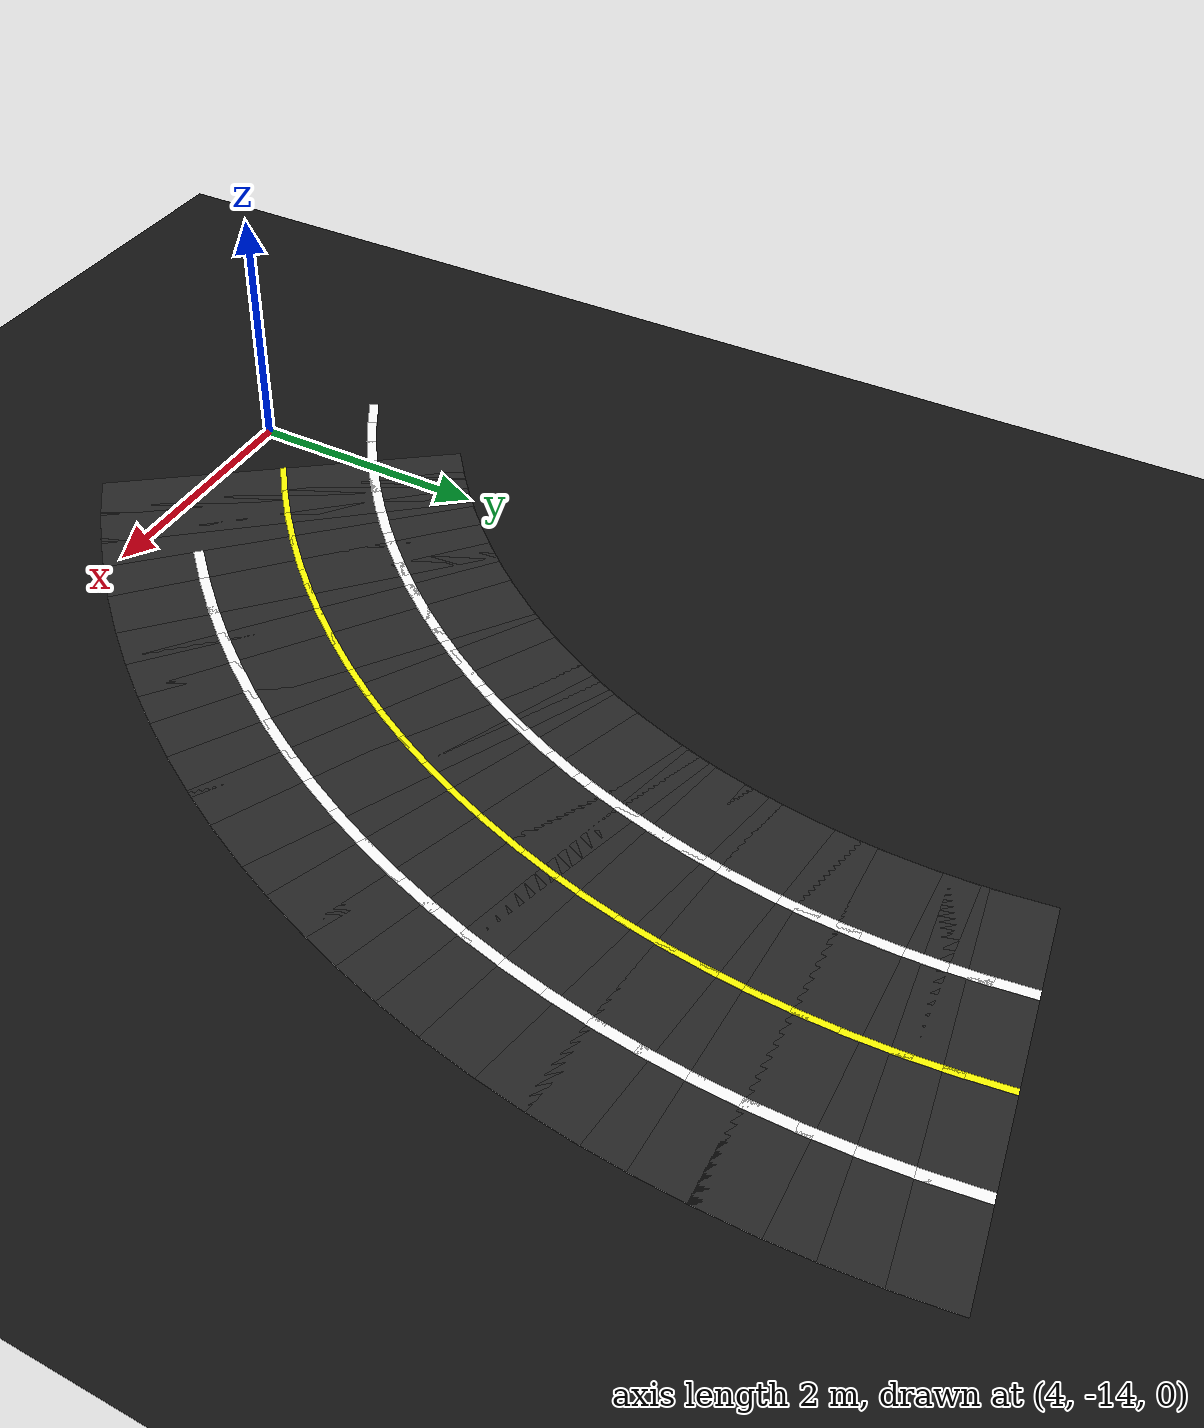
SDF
<sdf version="1.6">
 <world name="figure8_world">
  <model name="ground_plane">
   <static>true</static>
   <link name="link">
    <collision name="collision">
     <geometry><plane><normal>0 0 1</normal><size>100 100</size></plane></geometry>
    </collision>
    <visual name="visual">
     <geometry><plane><normal>0 0 1</normal><size>100 100</size></plane></geometry>
     <material><ambient>0.08 0.08 0.08 1</ambient><diffuse>0.08 0.08 0.08 1</diffuse></material>
    </visual>
   </link>
  </model>
  <model name="seg_00664">
   <static>true</static>
   <pose>7.4297 -6.4753 0.0010 0 0 -1.4337</pose>
   <link name="link">
    <collision name="collision"><geometry><box><size>0.4500 3.0000 0.002</size></box></geometry></collision>
    <visual name="visual">
     <geometry><box><size>0.4500 3.0000 0.002</size></box></geometry>
     <material><ambient>0.15 0.15 0.15 1</ambient><diffuse>0.15 0.15 0.15 1</diffuse></material>
    </visual>
   </link>
  </model>
  <model name="seg_00665">
   <static>true</static>
   <pose>8.1726 -6.3729 0.0030 0 0 -1.4337</pose>
   <link name="link">
    <collision name="collision"><geometry><box><size>0.4500 0.0800 0.002</size></box></geometry></collision>
    <visual name="visual">
     <geometry><box><size>0.4500 0.0800 0.002</size></box></geometry>
     <material><ambient>1 1 1 1</ambient><diffuse>1 1 1 1</diffuse></material>
    </visual>
   </link>
  </model>
  <model name="seg_00666">
   <static>true</static>
   <pose>6.6867 -6.5778 0.0030 0 0 -1.4337</pose>
   <link name="link">
    <collision name="collision"><geometry><box><size>0.4500 0.0800 0.002</size></box></geometry></collision>
    <visual name="visual">
     <geometry><box><size>0.4500 0.0800 0.002</size></box></geometry>
     <material><ambient>1 1 1 1</ambient><diffuse>1 1 1 1</diffuse></material>
    </visual>
   </link>
  </model>
  <model name="seg_00667">
   <static>true</static>
   <pose>7.4297 -6.4753 0.0030 0 0 -1.4337</pose>
   <link name="link">
    <collision name="collision"><geometry><box><size>0.4500 0.0500 0.002</size></box></geometry></collision>
    <visual name="visual">
     <geometry><box><size>0.4500 0.0500 0.002</size></box></geometry>
     <material><ambient>1 1 0 1</ambient><diffuse>1 1 0 1</diffuse></material>
    </visual>
   </link>
  </model>
  <model name="seg_00668">
   <static>true</static>
   <pose>7.4663 -6.7895 0.0010 0 0 -1.4759</pose>
   <link name="link">
    <collision name="collision"><geometry><box><size>0.4500 3.0000 0.002</size></box></geometry></collision>
    <visual name="visual">
     <geometry><box><size>0.4500 3.0000 0.002</size></box></geometry>
     <material><ambient>0.15 0.15 0.15 1</ambient><diffuse>0.15 0.15 0.15 1</diffuse></material>
    </visual>
   </link>
  </model>
  <model name="seg_00669">
   <static>true</static>
   <pose>8.2129 -6.7184 0.0030 0 0 -1.4759</pose>
   <link name="link">
    <collision name="collision"><geometry><box><size>0.4500 0.0800 0.002</size></box></geometry></collision>
    <visual name="visual">
     <geometry><box><size>0.4500 0.0800 0.002</size></box></geometry>
     <material><ambient>1 1 1 1</ambient><diffuse>1 1 1 1</diffuse></material>
    </visual>
   </link>
  </model>
  <model name="seg_00670">
   <static>true</static>
   <pose>6.7196 -6.8605 0.0030 0 0 -1.4759</pose>
   <link name="link">
    <collision name="collision"><geometry><box><size>0.4500 0.0800 0.002</size></box></geometry></collision>
    <visual name="visual">
     <geometry><box><size>0.4500 0.0800 0.002</size></box></geometry>
     <material><ambient>1 1 1 1</ambient><diffuse>1 1 1 1</diffuse></material>
    </visual>
   </link>
  </model>
  <model name="seg_00671">
   <static>true</static>
   <pose>7.4663 -6.7895 0.0030 0 0 -1.4759</pose>
   <link name="link">
    <collision name="collision"><geometry><box><size>0.4500 0.0500 0.002</size></box></geometry></collision>
    <visual name="visual">
     <geometry><box><size>0.4500 0.0500 0.002</size></box></geometry>
     <material><ambient>1 1 0 1</ambient><diffuse>1 1 0 1</diffuse></material>
    </visual>
   </link>
  </model>
  <model name="seg_00672">
   <static>true</static>
   <pose>7.4896 -7.1048 0.0010 0 0 -1.5181</pose>
   <link name="link">
    <collision name="collision"><geometry><box><size>0.4500 3.0000 0.002</size></box></geometry></collision>
    <visual name="visual">
     <geometry><box><size>0.4500 3.0000 0.002</size></box></geometry>
     <material><ambient>0.15 0.15 0.15 1</ambient><diffuse>0.15 0.15 0.15 1</diffuse></material>
    </visual>
   </link>
  </model>
  <model name="seg_00673">
   <static>true</static>
   <pose>8.2385 -7.0653 0.0030 0 0 -1.5181</pose>
   <link name="link">
    <collision name="collision"><geometry><box><size>0.4500 0.0800 0.002</size></box></geometry></collision>
    <visual name="visual">
     <geometry><box><size>0.4500 0.0800 0.002</size></box></geometry>
     <material><ambient>1 1 1 1</ambient><diffuse>1 1 1 1</diffuse></material>
    </visual>
   </link>
  </model>
  <model name="seg_00674">
   <static>true</static>
   <pose>6.7406 -7.1444 0.0030 0 0 -1.5181</pose>
   <link name="link">
    <collision name="collision"><geometry><box><size>0.4500 0.0800 0.002</size></box></geometry></collision>
    <visual name="visual">
     <geometry><box><size>0.4500 0.0800 0.002</size></box></geometry>
     <material><ambient>1 1 1 1</ambient><diffuse>1 1 1 1</diffuse></material>
    </visual>
   </link>
  </model>
  <model name="seg_00675">
   <static>true</static>
   <pose>7.4896 -7.1048 0.0030 0 0 -1.5181</pose>
   <link name="link">
    <collision name="collision"><geometry><box><size>0.4500 0.0500 0.002</size></box></geometry></collision>
    <visual name="visual">
     <geometry><box><size>0.4500 0.0500 0.002</size></box></geometry>
     <material><ambient>1 1 0 1</ambient><diffuse>1 1 0 1</diffuse></material>
    </visual>
   </link>
  </model>
  <model name="seg_00676">
   <static>true</static>
   <pose>7.4996 -7.4209 0.0010 0 0 -1.5603</pose>
   <link name="link">
    <collision name="collision"><geometry><box><size>0.4500 3.0000 0.002</size></box></geometry></collision>
    <visual name="visual">
     <geometry><box><size>0.4500 3.0000 0.002</size></box></geometry>
     <material><ambient>0.15 0.15 0.15 1</ambient><diffuse>0.15 0.15 0.15 1</diffuse></material>
    </visual>
   </link>
  </model>
  <model name="seg_00677">
   <static>true</static>
   <pose>8.2495 -7.4130 0.0030 0 0 -1.5603</pose>
   <link name="link">
    <collision name="collision"><geometry><box><size>0.4500 0.0800 0.002</size></box></geometry></collision>
    <visual name="visual">
     <geometry><box><size>0.4500 0.0800 0.002</size></box></geometry>
     <material><ambient>1 1 1 1</ambient><diffuse>1 1 1 1</diffuse></material>
    </visual>
   </link>
  </model>
  <model name="seg_00678">
   <static>true</static>
   <pose>6.7496 -7.4288 0.0030 0 0 -1.5603</pose>
   <link name="link">
    <collision name="collision"><geometry><box><size>0.4500 0.0800 0.002</size></box></geometry></collision>
    <visual name="visual">
     <geometry><box><size>0.4500 0.0800 0.002</size></box></geometry>
     <material><ambient>1 1 1 1</ambient><diffuse>1 1 1 1</diffuse></material>
    </visual>
   </link>
  </model>
  <model name="seg_00679">
   <static>true</static>
   <pose>7.4996 -7.4209 0.0030 0 0 -1.5603</pose>
   <link name="link">
    <collision name="collision"><geometry><box><size>0.4500 0.0500 0.002</size></box></geometry></collision>
    <visual name="visual">
     <geometry><box><size>0.4500 0.0500 0.002</size></box></geometry>
     <material><ambient>1 1 0 1</ambient><diffuse>1 1 0 1</diffuse></material>
    </visual>
   </link>
  </model>
  <model name="seg_00680">
   <static>true</static>
   <pose>7.4962 -7.7372 0.0010 0 0 -1.6024</pose>
   <link name="link">
    <collision name="collision"><geometry><box><size>0.4500 3.0000 0.002</size></box></geometry></collision>
    <visual name="visual">
     <geometry><box><size>0.4500 3.0000 0.002</size></box></geometry>
     <material><ambient>0.15 0.15 0.15 1</ambient><diffuse>0.15 0.15 0.15 1</diffuse></material>
    </visual>
   </link>
  </model>
  <model name="seg_00681">
   <static>true</static>
   <pose>8.2459 -7.7609 0.0030 0 0 -1.6024</pose>
   <link name="link">
    <collision name="collision"><geometry><box><size>0.4500 0.0800 0.002</size></box></geometry></collision>
    <visual name="visual">
     <geometry><box><size>0.4500 0.0800 0.002</size></box></geometry>
     <material><ambient>1 1 1 1</ambient><diffuse>1 1 1 1</diffuse></material>
    </visual>
   </link>
  </model>
  <model name="seg_00682">
   <static>true</static>
   <pose>6.7466 -7.7134 0.0030 0 0 -1.6024</pose>
   <link name="link">
    <collision name="collision"><geometry><box><size>0.4500 0.0800 0.002</size></box></geometry></collision>
    <visual name="visual">
     <geometry><box><size>0.4500 0.0800 0.002</size></box></geometry>
     <material><ambient>1 1 1 1</ambient><diffuse>1 1 1 1</diffuse></material>
    </visual>
   </link>
  </model>
  <model name="seg_00683">
   <static>true</static>
   <pose>7.4962 -7.7372 0.0030 0 0 -1.6024</pose>
   <link name="link">
    <collision name="collision"><geometry><box><size>0.4500 0.0500 0.002</size></box></geometry></collision>
    <visual name="visual">
     <geometry><box><size>0.4500 0.0500 0.002</size></box></geometry>
     <material><ambient>1 1 0 1</ambient><diffuse>1 1 0 1</diffuse></material>
    </visual>
   </link>
  </model>
  <model name="seg_00684">
   <static>true</static>
   <pose>7.4796 -8.0530 0.0010 0 0 -1.6446</pose>
   <link name="link">
    <collision name="collision"><geometry><box><size>0.4500 3.0000 0.002</size></box></geometry></collision>
    <visual name="visual">
     <geometry><box><size>0.4500 3.0000 0.002</size></box></geometry>
     <material><ambient>0.15 0.15 0.15 1</ambient><diffuse>0.15 0.15 0.15 1</diffuse></material>
    </visual>
   </link>
  </model>
  <model name="seg_00685">
   <static>true</static>
   <pose>8.2275 -8.1083 0.0030 0 0 -1.6446</pose>
   <link name="link">
    <collision name="collision"><geometry><box><size>0.4500 0.0800 0.002</size></box></geometry></collision>
    <visual name="visual">
     <geometry><box><size>0.4500 0.0800 0.002</size></box></geometry>
     <material><ambient>1 1 1 1</ambient><diffuse>1 1 1 1</diffuse></material>
    </visual>
   </link>
  </model>
  <model name="seg_00686">
   <static>true</static>
   <pose>6.7316 -7.9977 0.0030 0 0 -1.6446</pose>
   <link name="link">
    <collision name="collision"><geometry><box><size>0.4500 0.0800 0.002</size></box></geometry></collision>
    <visual name="visual">
     <geometry><box><size>0.4500 0.0800 0.002</size></box></geometry>
     <material><ambient>1 1 1 1</ambient><diffuse>1 1 1 1</diffuse></material>
    </visual>
   </link>
  </model>
  <model name="seg_00687">
   <static>true</static>
   <pose>7.4796 -8.0530 0.0030 0 0 -1.6446</pose>
   <link name="link">
    <collision name="collision"><geometry><box><size>0.4500 0.0500 0.002</size></box></geometry></collision>
    <visual name="visual">
     <geometry><box><size>0.4500 0.0500 0.002</size></box></geometry>
     <material><ambient>1 1 0 1</ambient><diffuse>1 1 0 1</diffuse></material>
    </visual>
   </link>
  </model>
  <model name="seg_00688">
   <static>true</static>
   <pose>7.4496 -8.3678 0.0010 0 0 -1.6868</pose>
   <link name="link">
    <collision name="collision"><geometry><box><size>0.4500 3.0000 0.002</size></box></geometry></collision>
    <visual name="visual">
     <geometry><box><size>0.4500 3.0000 0.002</size></box></geometry>
     <material><ambient>0.15 0.15 0.15 1</ambient><diffuse>0.15 0.15 0.15 1</diffuse></material>
    </visual>
   </link>
  </model>
  <model name="seg_00689">
   <static>true</static>
   <pose>8.1946 -8.4546 0.0030 0 0 -1.6868</pose>
   <link name="link">
    <collision name="collision"><geometry><box><size>0.4500 0.0800 0.002</size></box></geometry></collision>
    <visual name="visual">
     <geometry><box><size>0.4500 0.0800 0.002</size></box></geometry>
     <material><ambient>1 1 1 1</ambient><diffuse>1 1 1 1</diffuse></material>
    </visual>
   </link>
  </model>
  <model name="seg_00690">
   <static>true</static>
   <pose>6.7047 -8.2810 0.0030 0 0 -1.6868</pose>
   <link name="link">
    <collision name="collision"><geometry><box><size>0.4500 0.0800 0.002</size></box></geometry></collision>
    <visual name="visual">
     <geometry><box><size>0.4500 0.0800 0.002</size></box></geometry>
     <material><ambient>1 1 1 1</ambient><diffuse>1 1 1 1</diffuse></material>
    </visual>
   </link>
  </model>
  <model name="seg_00691">
   <static>true</static>
   <pose>7.4496 -8.3678 0.0030 0 0 -1.6868</pose>
   <link name="link">
    <collision name="collision"><geometry><box><size>0.4500 0.0500 0.002</size></box></geometry></collision>
    <visual name="visual">
     <geometry><box><size>0.4500 0.0500 0.002</size></box></geometry>
     <material><ambient>1 1 0 1</ambient><diffuse>1 1 0 1</diffuse></material>
    </visual>
   </link>
  </model>
  <model name="seg_00692">
   <static>true</static>
   <pose>7.4064 -8.6811 0.0010 0 0 -1.7289</pose>
   <link name="link">
    <collision name="collision"><geometry><box><size>0.4500 3.0000 0.002</size></box></geometry></collision>
    <visual name="visual">
     <geometry><box><size>0.4500 3.0000 0.002</size></box></geometry>
     <material><ambient>0.15 0.15 0.15 1</ambient><diffuse>0.15 0.15 0.15 1</diffuse></material>
    </visual>
   </link>
  </model>
  <model name="seg_00693">
   <static>true</static>
   <pose>8.1471 -8.7992 0.0030 0 0 -1.7289</pose>
   <link name="link">
    <collision name="collision"><geometry><box><size>0.4500 0.0800 0.002</size></box></geometry></collision>
    <visual name="visual">
     <geometry><box><size>0.4500 0.0800 0.002</size></box></geometry>
     <material><ambient>1 1 1 1</ambient><diffuse>1 1 1 1</diffuse></material>
    </visual>
   </link>
  </model>
  <model name="seg_00694">
   <static>true</static>
   <pose>6.6658 -8.5630 0.0030 0 0 -1.7289</pose>
   <link name="link">
    <collision name="collision"><geometry><box><size>0.4500 0.0800 0.002</size></box></geometry></collision>
    <visual name="visual">
     <geometry><box><size>0.4500 0.0800 0.002</size></box></geometry>
     <material><ambient>1 1 1 1</ambient><diffuse>1 1 1 1</diffuse></material>
    </visual>
   </link>
  </model>
  <model name="seg_00695">
   <static>true</static>
   <pose>7.4064 -8.6811 0.0030 0 0 -1.7289</pose>
   <link name="link">
    <collision name="collision"><geometry><box><size>0.4500 0.0500 0.002</size></box></geometry></collision>
    <visual name="visual">
     <geometry><box><size>0.4500 0.0500 0.002</size></box></geometry>
     <material><ambient>1 1 0 1</ambient><diffuse>1 1 0 1</diffuse></material>
    </visual>
   </link>
  </model>
  <model name="seg_00696">
   <static>true</static>
   <pose>7.3500 -8.9922 0.0010 0 0 -1.7711</pose>
   <link name="link">
    <collision name="collision"><geometry><box><size>0.4500 3.0000 0.002</size></box></geometry></collision>
    <visual name="visual">
     <geometry><box><size>0.4500 3.0000 0.002</size></box></geometry>
     <material><ambient>0.15 0.15 0.15 1</ambient><diffuse>0.15 0.15 0.15 1</diffuse></material>
    </visual>
   </link>
  </model>
  <model name="seg_00697">
   <static>true</static>
   <pose>8.0851 -9.1415 0.0030 0 0 -1.7711</pose>
   <link name="link">
    <collision name="collision"><geometry><box><size>0.4500 0.0800 0.002</size></box></geometry></collision>
    <visual name="visual">
     <geometry><box><size>0.4500 0.0800 0.002</size></box></geometry>
     <material><ambient>1 1 1 1</ambient><diffuse>1 1 1 1</diffuse></material>
    </visual>
   </link>
  </model>
  <model name="seg_00698">
   <static>true</static>
   <pose>6.6150 -8.8430 0.0030 0 0 -1.7711</pose>
   <link name="link">
    <collision name="collision"><geometry><box><size>0.4500 0.0800 0.002</size></box></geometry></collision>
    <visual name="visual">
     <geometry><box><size>0.4500 0.0800 0.002</size></box></geometry>
     <material><ambient>1 1 1 1</ambient><diffuse>1 1 1 1</diffuse></material>
    </visual>
   </link>
  </model>
  <model name="seg_00699">
   <static>true</static>
   <pose>7.3500 -8.9922 0.0030 0 0 -1.7711</pose>
   <link name="link">
    <collision name="collision"><geometry><box><size>0.4500 0.0500 0.002</size></box></geometry></collision>
    <visual name="visual">
     <geometry><box><size>0.4500 0.0500 0.002</size></box></geometry>
     <material><ambient>1 1 0 1</ambient><diffuse>1 1 0 1</diffuse></material>
    </visual>
   </link>
  </model>
  <model name="seg_00700">
   <static>true</static>
   <pose>7.2806 -9.3008 0.0010 0 0 -1.8133</pose>
   <link name="link">
    <collision name="collision"><geometry><box><size>0.4500 3.0000 0.002</size></box></geometry></collision>
    <visual name="visual">
     <geometry><box><size>0.4500 3.0000 0.002</size></box></geometry>
     <material><ambient>0.15 0.15 0.15 1</ambient><diffuse>0.15 0.15 0.15 1</diffuse></material>
    </visual>
   </link>
  </model>
  <model name="seg_00701">
   <static>true</static>
   <pose>8.0087 -9.4808 0.0030 0 0 -1.8133</pose>
   <link name="link">
    <collision name="collision"><geometry><box><size>0.4500 0.0800 0.002</size></box></geometry></collision>
    <visual name="visual">
     <geometry><box><size>0.4500 0.0800 0.002</size></box></geometry>
     <material><ambient>1 1 1 1</ambient><diffuse>1 1 1 1</diffuse></material>
    </visual>
   </link>
  </model>
  <model name="seg_00702">
   <static>true</static>
   <pose>6.5525 -9.1207 0.0030 0 0 -1.8133</pose>
   <link name="link">
    <collision name="collision"><geometry><box><size>0.4500 0.0800 0.002</size></box></geometry></collision>
    <visual name="visual">
     <geometry><box><size>0.4500 0.0800 0.002</size></box></geometry>
     <material><ambient>1 1 1 1</ambient><diffuse>1 1 1 1</diffuse></material>
    </visual>
   </link>
  </model>
  <model name="seg_00703">
   <static>true</static>
   <pose>7.2806 -9.3008 0.0030 0 0 -1.8133</pose>
   <link name="link">
    <collision name="collision"><geometry><box><size>0.4500 0.0500 0.002</size></box></geometry></collision>
    <visual name="visual">
     <geometry><box><size>0.4500 0.0500 0.002</size></box></geometry>
     <material><ambient>1 1 0 1</ambient><diffuse>1 1 0 1</diffuse></material>
    </visual>
   </link>
  </model>
  <model name="seg_00704">
   <static>true</static>
   <pose>7.1982 -9.6061 0.0010 0 0 -1.8554</pose>
   <link name="link">
    <collision name="collision"><geometry><box><size>0.4500 3.0000 0.002</size></box></geometry></collision>
    <visual name="visual">
     <geometry><box><size>0.4500 3.0000 0.002</size></box></geometry>
     <material><ambient>0.15 0.15 0.15 1</ambient><diffuse>0.15 0.15 0.15 1</diffuse></material>
    </visual>
   </link>
  </model>
  <model name="seg_00705">
   <static>true</static>
   <pose>7.9180 -9.8167 0.0030 0 0 -1.8554</pose>
   <link name="link">
    <collision name="collision"><geometry><box><size>0.4500 0.0800 0.002</size></box></geometry></collision>
    <visual name="visual">
     <geometry><box><size>0.4500 0.0800 0.002</size></box></geometry>
     <material><ambient>1 1 1 1</ambient><diffuse>1 1 1 1</diffuse></material>
    </visual>
   </link>
  </model>
  <model name="seg_00706">
   <static>true</static>
   <pose>6.4784 -9.3955 0.0030 0 0 -1.8554</pose>
   <link name="link">
    <collision name="collision"><geometry><box><size>0.4500 0.0800 0.002</size></box></geometry></collision>
    <visual name="visual">
     <geometry><box><size>0.4500 0.0800 0.002</size></box></geometry>
     <material><ambient>1 1 1 1</ambient><diffuse>1 1 1 1</diffuse></material>
    </visual>
   </link>
  </model>
  <model name="seg_00707">
   <static>true</static>
   <pose>7.1982 -9.6061 0.0030 0 0 -1.8554</pose>
   <link name="link">
    <collision name="collision"><geometry><box><size>0.4500 0.0500 0.002</size></box></geometry></collision>
    <visual name="visual">
     <geometry><box><size>0.4500 0.0500 0.002</size></box></geometry>
     <material><ambient>1 1 0 1</ambient><diffuse>1 1 0 1</diffuse></material>
    </visual>
   </link>
  </model>
  <model name="seg_00708">
   <static>true</static>
   <pose>7.1030 -9.9077 0.0010 0 0 -1.8976</pose>
   <link name="link">
    <collision name="collision"><geometry><box><size>0.4500 3.0000 0.002</size></box></geometry></collision>
    <visual name="visual">
     <geometry><box><size>0.4500 3.0000 0.002</size></box></geometry>
     <material><ambient>0.15 0.15 0.15 1</ambient><diffuse>0.15 0.15 0.15 1</diffuse></material>
    </visual>
   </link>
  </model>
  <model name="seg_00709">
   <static>true</static>
   <pose>7.8133 -10.1484 0.0030 0 0 -1.8976</pose>
   <link name="link">
    <collision name="collision"><geometry><box><size>0.4500 0.0800 0.002</size></box></geometry></collision>
    <visual name="visual">
     <geometry><box><size>0.4500 0.0800 0.002</size></box></geometry>
     <material><ambient>1 1 1 1</ambient><diffuse>1 1 1 1</diffuse></material>
    </visual>
   </link>
  </model>
  <model name="seg_00710">
   <static>true</static>
   <pose>6.3927 -9.6669 0.0030 0 0 -1.8976</pose>
   <link name="link">
    <collision name="collision"><geometry><box><size>0.4500 0.0800 0.002</size></box></geometry></collision>
    <visual name="visual">
     <geometry><box><size>0.4500 0.0800 0.002</size></box></geometry>
     <material><ambient>1 1 1 1</ambient><diffuse>1 1 1 1</diffuse></material>
    </visual>
   </link>
  </model>
  <model name="seg_00711">
   <static>true</static>
   <pose>7.1030 -9.9077 0.0030 0 0 -1.8976</pose>
   <link name="link">
    <collision name="collision"><geometry><box><size>0.4500 0.0500 0.002</size></box></geometry></collision>
    <visual name="visual">
     <geometry><box><size>0.4500 0.0500 0.002</size></box></geometry>
     <material><ambient>1 1 0 1</ambient><diffuse>1 1 0 1</diffuse></material>
    </visual>
   </link>
  </model>
  <model name="seg_00712">
   <static>true</static>
   <pose>6.9952 -10.2050 0.0010 0 0 -1.9398</pose>
   <link name="link">
    <collision name="collision"><geometry><box><size>0.4500 3.0000 0.002</size></box></geometry></collision>
    <visual name="visual">
     <geometry><box><size>0.4500 3.0000 0.002</size></box></geometry>
     <material><ambient>0.15 0.15 0.15 1</ambient><diffuse>0.15 0.15 0.15 1</diffuse></material>
    </visual>
   </link>
  </model>
  <model name="seg_00713">
   <static>true</static>
   <pose>7.6947 -10.4755 0.0030 0 0 -1.9398</pose>
   <link name="link">
    <collision name="collision"><geometry><box><size>0.4500 0.0800 0.002</size></box></geometry></collision>
    <visual name="visual">
     <geometry><box><size>0.4500 0.0800 0.002</size></box></geometry>
     <material><ambient>1 1 1 1</ambient><diffuse>1 1 1 1</diffuse></material>
    </visual>
   </link>
  </model>
  <model name="seg_00714">
   <static>true</static>
   <pose>6.2957 -9.9345 0.0030 0 0 -1.9398</pose>
   <link name="link">
    <collision name="collision"><geometry><box><size>0.4500 0.0800 0.002</size></box></geometry></collision>
    <visual name="visual">
     <geometry><box><size>0.4500 0.0800 0.002</size></box></geometry>
     <material><ambient>1 1 1 1</ambient><diffuse>1 1 1 1</diffuse></material>
    </visual>
   </link>
  </model>
  <model name="seg_00715">
   <static>true</static>
   <pose>6.9952 -10.2050 0.0030 0 0 -1.9398</pose>
   <link name="link">
    <collision name="collision"><geometry><box><size>0.4500 0.0500 0.002</size></box></geometry></collision>
    <visual name="visual">
     <geometry><box><size>0.4500 0.0500 0.002</size></box></geometry>
     <material><ambient>1 1 0 1</ambient><diffuse>1 1 0 1</diffuse></material>
    </visual>
   </link>
  </model>
  <model name="seg_00716">
   <static>true</static>
   <pose>6.8750 -10.4975 0.0010 0 0 -1.9819</pose>
   <link name="link">
    <collision name="collision"><geometry><box><size>0.4500 3.0000 0.002</size></box></geometry></collision>
    <visual name="visual">
     <geometry><box><size>0.4500 3.0000 0.002</size></box></geometry>
     <material><ambient>0.15 0.15 0.15 1</ambient><diffuse>0.15 0.15 0.15 1</diffuse></material>
    </visual>
   </link>
  </model>
  <model name="seg_00717">
   <static>true</static>
   <pose>7.5625 -10.7972 0.0030 0 0 -1.9819</pose>
   <link name="link">
    <collision name="collision"><geometry><box><size>0.4500 0.0800 0.002</size></box></geometry></collision>
    <visual name="visual">
     <geometry><box><size>0.4500 0.0800 0.002</size></box></geometry>
     <material><ambient>1 1 1 1</ambient><diffuse>1 1 1 1</diffuse></material>
    </visual>
   </link>
  </model>
  <model name="seg_00718">
   <static>true</static>
   <pose>6.1875 -10.1977 0.0030 0 0 -1.9819</pose>
   <link name="link">
    <collision name="collision"><geometry><box><size>0.4500 0.0800 0.002</size></box></geometry></collision>
    <visual name="visual">
     <geometry><box><size>0.4500 0.0800 0.002</size></box></geometry>
     <material><ambient>1 1 1 1</ambient><diffuse>1 1 1 1</diffuse></material>
    </visual>
   </link>
  </model>
  <model name="seg_00719">
   <static>true</static>
   <pose>6.8750 -10.4975 0.0030 0 0 -1.9819</pose>
   <link name="link">
    <collision name="collision"><geometry><box><size>0.4500 0.0500 0.002</size></box></geometry></collision>
    <visual name="visual">
     <geometry><box><size>0.4500 0.0500 0.002</size></box></geometry>
     <material><ambient>1 1 0 1</ambient><diffuse>1 1 0 1</diffuse></material>
    </visual>
   </link>
  </model>
  <model name="seg_00720">
   <static>true</static>
   <pose>6.7425 -10.7846 0.0010 0 0 -2.0241</pose>
   <link name="link">
    <collision name="collision"><geometry><box><size>0.4500 3.0000 0.002</size></box></geometry></collision>
    <visual name="visual">
     <geometry><box><size>0.4500 3.0000 0.002</size></box></geometry>
     <material><ambient>0.15 0.15 0.15 1</ambient><diffuse>0.15 0.15 0.15 1</diffuse></material>
    </visual>
   </link>
  </model>
  <model name="seg_00721">
   <static>true</static>
   <pose>7.4167 -11.1131 0.0030 0 0 -2.0241</pose>
   <link name="link">
    <collision name="collision"><geometry><box><size>0.4500 0.0800 0.002</size></box></geometry></collision>
    <visual name="visual">
     <geometry><box><size>0.4500 0.0800 0.002</size></box></geometry>
     <material><ambient>1 1 1 1</ambient><diffuse>1 1 1 1</diffuse></material>
    </visual>
   </link>
  </model>
  <model name="seg_00722">
   <static>true</static>
   <pose>6.0682 -10.4562 0.0030 0 0 -2.0241</pose>
   <link name="link">
    <collision name="collision"><geometry><box><size>0.4500 0.0800 0.002</size></box></geometry></collision>
    <visual name="visual">
     <geometry><box><size>0.4500 0.0800 0.002</size></box></geometry>
     <material><ambient>1 1 1 1</ambient><diffuse>1 1 1 1</diffuse></material>
    </visual>
   </link>
  </model>
  <model name="seg_00723">
   <static>true</static>
   <pose>6.7425 -10.7846 0.0030 0 0 -2.0241</pose>
   <link name="link">
    <collision name="collision"><geometry><box><size>0.4500 0.0500 0.002</size></box></geometry></collision>
    <visual name="visual">
     <geometry><box><size>0.4500 0.0500 0.002</size></box></geometry>
     <material><ambient>1 1 0 1</ambient><diffuse>1 1 0 1</diffuse></material>
    </visual>
   </link>
  </model>
  <model name="seg_00724">
   <static>true</static>
   <pose>6.5980 -11.0659 0.0010 0 0 -2.0663</pose>
   <link name="link">
    <collision name="collision"><geometry><box><size>0.4500 3.0000 0.002</size></box></geometry></collision>
    <visual name="visual">
     <geometry><box><size>0.4500 3.0000 0.002</size></box></geometry>
     <material><ambient>0.15 0.15 0.15 1</ambient><diffuse>0.15 0.15 0.15 1</diffuse></material>
    </visual>
   </link>
  </model>
  <model name="seg_00725">
   <static>true</static>
   <pose>7.2578 -11.4225 0.0030 0 0 -2.0663</pose>
   <link name="link">
    <collision name="collision"><geometry><box><size>0.4500 0.0800 0.002</size></box></geometry></collision>
    <visual name="visual">
     <geometry><box><size>0.4500 0.0800 0.002</size></box></geometry>
     <material><ambient>1 1 1 1</ambient><diffuse>1 1 1 1</diffuse></material>
    </visual>
   </link>
  </model>
  <model name="seg_00726">
   <static>true</static>
   <pose>5.9382 -10.7094 0.0030 0 0 -2.0663</pose>
   <link name="link">
    <collision name="collision"><geometry><box><size>0.4500 0.0800 0.002</size></box></geometry></collision>
    <visual name="visual">
     <geometry><box><size>0.4500 0.0800 0.002</size></box></geometry>
     <material><ambient>1 1 1 1</ambient><diffuse>1 1 1 1</diffuse></material>
    </visual>
   </link>
  </model>
  <model name="seg_00727">
   <static>true</static>
   <pose>6.5980 -11.0659 0.0030 0 0 -2.0663</pose>
   <link name="link">
    <collision name="collision"><geometry><box><size>0.4500 0.0500 0.002</size></box></geometry></collision>
    <visual name="visual">
     <geometry><box><size>0.4500 0.0500 0.002</size></box></geometry>
     <material><ambient>1 1 0 1</ambient><diffuse>1 1 0 1</diffuse></material>
    </visual>
   </link>
  </model>
  <model name="seg_00728">
   <static>true</static>
   <pose>6.4418 -11.3409 0.0010 0 0 -2.1085</pose>
   <link name="link">
    <collision name="collision"><geometry><box><size>0.4500 3.0000 0.002</size></box></geometry></collision>
    <visual name="visual">
     <geometry><box><size>0.4500 3.0000 0.002</size></box></geometry>
     <material><ambient>0.15 0.15 0.15 1</ambient><diffuse>0.15 0.15 0.15 1</diffuse></material>
    </visual>
   </link>
  </model>
  <model name="seg_00729">
   <static>true</static>
   <pose>7.0860 -11.7250 0.0030 0 0 -2.1085</pose>
   <link name="link">
    <collision name="collision"><geometry><box><size>0.4500 0.0800 0.002</size></box></geometry></collision>
    <visual name="visual">
     <geometry><box><size>0.4500 0.0800 0.002</size></box></geometry>
     <material><ambient>1 1 1 1</ambient><diffuse>1 1 1 1</diffuse></material>
    </visual>
   </link>
  </model>
  <model name="seg_00730">
   <static>true</static>
   <pose>5.7977 -10.9568 0.0030 0 0 -2.1085</pose>
   <link name="link">
    <collision name="collision"><geometry><box><size>0.4500 0.0800 0.002</size></box></geometry></collision>
    <visual name="visual">
     <geometry><box><size>0.4500 0.0800 0.002</size></box></geometry>
     <material><ambient>1 1 1 1</ambient><diffuse>1 1 1 1</diffuse></material>
    </visual>
   </link>
  </model>
  <model name="seg_00731">
   <static>true</static>
   <pose>6.4418 -11.3409 0.0030 0 0 -2.1085</pose>
   <link name="link">
    <collision name="collision"><geometry><box><size>0.4500 0.0500 0.002</size></box></geometry></collision>
    <visual name="visual">
     <geometry><box><size>0.4500 0.0500 0.002</size></box></geometry>
     <material><ambient>1 1 0 1</ambient><diffuse>1 1 0 1</diffuse></material>
    </visual>
   </link>
  </model>
  <model name="seg_00732">
   <static>true</static>
   <pose>6.2742 -11.6091 0.0010 0 0 -2.1506</pose>
   <link name="link">
    <collision name="collision"><geometry><box><size>0.4500 3.0000 0.002</size></box></geometry></collision>
    <visual name="visual">
     <geometry><box><size>0.4500 3.0000 0.002</size></box></geometry>
     <material><ambient>0.15 0.15 0.15 1</ambient><diffuse>0.15 0.15 0.15 1</diffuse></material>
    </visual>
   </link>
  </model>
  <model name="seg_00733">
   <static>true</static>
   <pose>6.9016 -12.0200 0.0030 0 0 -2.1506</pose>
   <link name="link">
    <collision name="collision"><geometry><box><size>0.4500 0.0800 0.002</size></box></geometry></collision>
    <visual name="visual">
     <geometry><box><size>0.4500 0.0800 0.002</size></box></geometry>
     <material><ambient>1 1 1 1</ambient><diffuse>1 1 1 1</diffuse></material>
    </visual>
   </link>
  </model>
  <model name="seg_00734">
   <static>true</static>
   <pose>5.6468 -11.1982 0.0030 0 0 -2.1506</pose>
   <link name="link">
    <collision name="collision"><geometry><box><size>0.4500 0.0800 0.002</size></box></geometry></collision>
    <visual name="visual">
     <geometry><box><size>0.4500 0.0800 0.002</size></box></geometry>
     <material><ambient>1 1 1 1</ambient><diffuse>1 1 1 1</diffuse></material>
    </visual>
   </link>
  </model>
  <model name="seg_00735">
   <static>true</static>
   <pose>6.2742 -11.6091 0.0030 0 0 -2.1506</pose>
   <link name="link">
    <collision name="collision"><geometry><box><size>0.4500 0.0500 0.002</size></box></geometry></collision>
    <visual name="visual">
     <geometry><box><size>0.4500 0.0500 0.002</size></box></geometry>
     <material><ambient>1 1 0 1</ambient><diffuse>1 1 0 1</diffuse></material>
    </visual>
   </link>
  </model>
  <model name="seg_00736">
   <static>true</static>
   <pose>6.0954 -11.8699 0.0010 0 0 -2.1928</pose>
   <link name="link">
    <collision name="collision"><geometry><box><size>0.4500 3.0000 0.002</size></box></geometry></collision>
    <visual name="visual">
     <geometry><box><size>0.4500 3.0000 0.002</size></box></geometry>
     <material><ambient>0.15 0.15 0.15 1</ambient><diffuse>0.15 0.15 0.15 1</diffuse></material>
    </visual>
   </link>
  </model>
  <model name="seg_00737">
   <static>true</static>
   <pose>6.7049 -12.3069 0.0030 0 0 -2.1928</pose>
   <link name="link">
    <collision name="collision"><geometry><box><size>0.4500 0.0800 0.002</size></box></geometry></collision>
    <visual name="visual">
     <geometry><box><size>0.4500 0.0800 0.002</size></box></geometry>
     <material><ambient>1 1 1 1</ambient><diffuse>1 1 1 1</diffuse></material>
    </visual>
   </link>
  </model>
  <model name="seg_00738">
   <static>true</static>
   <pose>5.4859 -11.4329 0.0030 0 0 -2.1928</pose>
   <link name="link">
    <collision name="collision"><geometry><box><size>0.4500 0.0800 0.002</size></box></geometry></collision>
    <visual name="visual">
     <geometry><box><size>0.4500 0.0800 0.002</size></box></geometry>
     <material><ambient>1 1 1 1</ambient><diffuse>1 1 1 1</diffuse></material>
    </visual>
   </link>
  </model>
  <model name="seg_00739">
   <static>true</static>
   <pose>6.0954 -11.8699 0.0030 0 0 -2.1928</pose>
   <link name="link">
    <collision name="collision"><geometry><box><size>0.4500 0.0500 0.002</size></box></geometry></collision>
    <visual name="visual">
     <geometry><box><size>0.4500 0.0500 0.002</size></box></geometry>
     <material><ambient>1 1 0 1</ambient><diffuse>1 1 0 1</diffuse></material>
    </visual>
   </link>
  </model>
  <model name="seg_00740">
   <static>true</static>
   <pose>5.9058 -12.1230 0.0010 0 0 -2.2350</pose>
   <link name="link">
    <collision name="collision"><geometry><box><size>0.4500 3.0000 0.002</size></box></geometry></collision>
    <visual name="visual">
     <geometry><box><size>0.4500 3.0000 0.002</size></box></geometry>
     <material><ambient>0.15 0.15 0.15 1</ambient><diffuse>0.15 0.15 0.15 1</diffuse></material>
    </visual>
   </link>
  </model>
  <model name="seg_00741">
   <static>true</static>
   <pose>6.4963 -12.5853 0.0030 0 0 -2.2350</pose>
   <link name="link">
    <collision name="collision"><geometry><box><size>0.4500 0.0800 0.002</size></box></geometry></collision>
    <visual name="visual">
     <geometry><box><size>0.4500 0.0800 0.002</size></box></geometry>
     <material><ambient>1 1 1 1</ambient><diffuse>1 1 1 1</diffuse></material>
    </visual>
   </link>
  </model>
  <model name="seg_00742">
   <static>true</static>
   <pose>5.3152 -11.6607 0.0030 0 0 -2.2350</pose>
   <link name="link">
    <collision name="collision"><geometry><box><size>0.4500 0.0800 0.002</size></box></geometry></collision>
    <visual name="visual">
     <geometry><box><size>0.4500 0.0800 0.002</size></box></geometry>
     <material><ambient>1 1 1 1</ambient><diffuse>1 1 1 1</diffuse></material>
    </visual>
   </link>
  </model>
  <model name="seg_00743">
   <static>true</static>
   <pose>5.9058 -12.1230 0.0030 0 0 -2.2350</pose>
   <link name="link">
    <collision name="collision"><geometry><box><size>0.4500 0.0500 0.002</size></box></geometry></collision>
    <visual name="visual">
     <geometry><box><size>0.4500 0.0500 0.002</size></box></geometry>
     <material><ambient>1 1 0 1</ambient><diffuse>1 1 0 1</diffuse></material>
    </visual>
   </link>
  </model>
  <model name="seg_00744">
   <static>true</static>
   <pose>5.7056 -12.3679 0.0010 0 0 -2.2771</pose>
   <link name="link">
    <collision name="collision"><geometry><box><size>0.4500 3.0000 0.002</size></box></geometry></collision>
    <visual name="visual">
     <geometry><box><size>0.4500 3.0000 0.002</size></box></geometry>
     <material><ambient>0.15 0.15 0.15 1</ambient><diffuse>0.15 0.15 0.15 1</diffuse></material>
    </visual>
   </link>
  </model>
  <model name="seg_00745">
   <static>true</static>
   <pose>6.2762 -12.8546 0.0030 0 0 -2.2771</pose>
   <link name="link">
    <collision name="collision"><geometry><box><size>0.4500 0.0800 0.002</size></box></geometry></collision>
    <visual name="visual">
     <geometry><box><size>0.4500 0.0800 0.002</size></box></geometry>
     <material><ambient>1 1 1 1</ambient><diffuse>1 1 1 1</diffuse></material>
    </visual>
   </link>
  </model>
  <model name="seg_00746">
   <static>true</static>
   <pose>5.1351 -11.8811 0.0030 0 0 -2.2771</pose>
   <link name="link">
    <collision name="collision"><geometry><box><size>0.4500 0.0800 0.002</size></box></geometry></collision>
    <visual name="visual">
     <geometry><box><size>0.4500 0.0800 0.002</size></box></geometry>
     <material><ambient>1 1 1 1</ambient><diffuse>1 1 1 1</diffuse></material>
    </visual>
   </link>
  </model>
  <model name="seg_00747">
   <static>true</static>
   <pose>5.7056 -12.3679 0.0030 0 0 -2.2771</pose>
   <link name="link">
    <collision name="collision"><geometry><box><size>0.4500 0.0500 0.002</size></box></geometry></collision>
    <visual name="visual">
     <geometry><box><size>0.4500 0.0500 0.002</size></box></geometry>
     <material><ambient>1 1 0 1</ambient><diffuse>1 1 0 1</diffuse></material>
    </visual>
   </link>
  </model>
  <model name="seg_00748">
   <static>true</static>
   <pose>5.4953 -12.6041 0.0010 0 0 -2.3193</pose>
   <link name="link">
    <collision name="collision"><geometry><box><size>0.4500 3.0000 0.002</size></box></geometry></collision>
    <visual name="visual">
     <geometry><box><size>0.4500 3.0000 0.002</size></box></geometry>
     <material><ambient>0.15 0.15 0.15 1</ambient><diffuse>0.15 0.15 0.15 1</diffuse></material>
    </visual>
   </link>
  </model>
  <model name="seg_00749">
   <static>true</static>
   <pose>6.0449 -13.1145 0.0030 0 0 -2.3193</pose>
   <link name="link">
    <collision name="collision"><geometry><box><size>0.4500 0.0800 0.002</size></box></geometry></collision>
    <visual name="visual">
     <geometry><box><size>0.4500 0.0800 0.002</size></box></geometry>
     <material><ambient>1 1 1 1</ambient><diffuse>1 1 1 1</diffuse></material>
    </visual>
   </link>
  </model>
  <model name="seg_00750">
   <static>true</static>
   <pose>4.9458 -12.0936 0.0030 0 0 -2.3193</pose>
   <link name="link">
    <collision name="collision"><geometry><box><size>0.4500 0.0800 0.002</size></box></geometry></collision>
    <visual name="visual">
     <geometry><box><size>0.4500 0.0800 0.002</size></box></geometry>
     <material><ambient>1 1 1 1</ambient><diffuse>1 1 1 1</diffuse></material>
    </visual>
   </link>
  </model>
  <model name="seg_00751">
   <static>true</static>
   <pose>5.4953 -12.6041 0.0030 0 0 -2.3193</pose>
   <link name="link">
    <collision name="collision"><geometry><box><size>0.4500 0.0500 0.002</size></box></geometry></collision>
    <visual name="visual">
     <geometry><box><size>0.4500 0.0500 0.002</size></box></geometry>
     <material><ambient>1 1 0 1</ambient><diffuse>1 1 0 1</diffuse></material>
    </visual>
   </link>
  </model>
  <model name="seg_00752">
   <static>true</static>
   <pose>5.2753 -12.8312 0.0010 0 0 -2.3615</pose>
   <link name="link">
    <collision name="collision"><geometry><box><size>0.4500 3.0000 0.002</size></box></geometry></collision>
    <visual name="visual">
     <geometry><box><size>0.4500 3.0000 0.002</size></box></geometry>
     <material><ambient>0.15 0.15 0.15 1</ambient><diffuse>0.15 0.15 0.15 1</diffuse></material>
    </visual>
   </link>
  </model>
  <model name="seg_00753">
   <static>true</static>
   <pose>5.8028 -13.3643 0.0030 0 0 -2.3615</pose>
   <link name="link">
    <collision name="collision"><geometry><box><size>0.4500 0.0800 0.002</size></box></geometry></collision>
    <visual name="visual">
     <geometry><box><size>0.4500 0.0800 0.002</size></box></geometry>
     <material><ambient>1 1 1 1</ambient><diffuse>1 1 1 1</diffuse></material>
    </visual>
   </link>
  </model>
  <model name="seg_00754">
   <static>true</static>
   <pose>4.7477 -12.2981 0.0030 0 0 -2.3615</pose>
   <link name="link">
    <collision name="collision"><geometry><box><size>0.4500 0.0800 0.002</size></box></geometry></collision>
    <visual name="visual">
     <geometry><box><size>0.4500 0.0800 0.002</size></box></geometry>
     <material><ambient>1 1 1 1</ambient><diffuse>1 1 1 1</diffuse></material>
    </visual>
   </link>
  </model>
  <model name="seg_00755">
   <static>true</static>
   <pose>5.2753 -12.8312 0.0030 0 0 -2.3615</pose>
   <link name="link">
    <collision name="collision"><geometry><box><size>0.4500 0.0500 0.002</size></box></geometry></collision>
    <visual name="visual">
     <geometry><box><size>0.4500 0.0500 0.002</size></box></geometry>
     <material><ambient>1 1 0 1</ambient><diffuse>1 1 0 1</diffuse></material>
    </visual>
   </link>
  </model>
  <model name="seg_00756">
   <static>true</static>
   <pose>5.0458 -13.0488 0.0010 0 0 -2.4036</pose>
   <link name="link">
    <collision name="collision"><geometry><box><size>0.4500 3.0000 0.002</size></box></geometry></collision>
    <visual name="visual">
     <geometry><box><size>0.4500 3.0000 0.002</size></box></geometry>
     <material><ambient>0.15 0.15 0.15 1</ambient><diffuse>0.15 0.15 0.15 1</diffuse></material>
    </visual>
   </link>
  </model>
  <model name="seg_00758">
   <static>true</static>
   <pose>4.5413 -12.4939 0.0030 0 0 -2.4036</pose>
   <link name="link">
    <collision name="collision"><geometry><box><size>0.4500 0.0800 0.002</size></box></geometry></collision>
    <visual name="visual">
     <geometry><box><size>0.4500 0.0800 0.002</size></box></geometry>
     <material><ambient>1 1 1 1</ambient><diffuse>1 1 1 1</diffuse></material>
    </visual>
   </link>
  </model>
  <model name="seg_00759">
   <static>true</static>
   <pose>5.0458 -13.0488 0.0030 0 0 -2.4036</pose>
   <link name="link">
    <collision name="collision"><geometry><box><size>0.4500 0.0500 0.002</size></box></geometry></collision>
    <visual name="visual">
     <geometry><box><size>0.4500 0.0500 0.002</size></box></geometry>
     <material><ambient>1 1 0 1</ambient><diffuse>1 1 0 1</diffuse></material>
    </visual>
   </link>
  </model>
  <model name="seg_00760">
   <static>true</static>
   <pose>4.8074 -13.2566 0.0010 0 0 -2.4458</pose>
   <link name="link">
    <collision name="collision"><geometry><box><size>0.4500 3.0000 0.002</size></box></geometry></collision>
    <visual name="visual">
     <geometry><box><size>0.4500 3.0000 0.002</size></box></geometry>
     <material><ambient>0.15 0.15 0.15 1</ambient><diffuse>0.15 0.15 0.15 1</diffuse></material>
    </visual>
   </link>
  </model>
  <model name="seg_00762">
   <static>true</static>
   <pose>4.3267 -12.6810 0.0030 0 0 -2.4458</pose>
   <link name="link">
    <collision name="collision"><geometry><box><size>0.4500 0.0800 0.002</size></box></geometry></collision>
    <visual name="visual">
     <geometry><box><size>0.4500 0.0800 0.002</size></box></geometry>
     <material><ambient>1 1 1 1</ambient><diffuse>1 1 1 1</diffuse></material>
    </visual>
   </link>
  </model>
  <model name="seg_00763">
   <static>true</static>
   <pose>4.8074 -13.2566 0.0030 0 0 -2.4458</pose>
   <link name="link">
    <collision name="collision"><geometry><box><size>0.4500 0.0500 0.002</size></box></geometry></collision>
    <visual name="visual">
     <geometry><box><size>0.4500 0.0500 0.002</size></box></geometry>
     <material><ambient>1 1 0 1</ambient><diffuse>1 1 0 1</diffuse></material>
    </visual>
   </link>
  </model>
  <model name="seg_00764">
   <static>true</static>
   <pose>4.5605 -13.4542 0.0010 0 0 -2.4880</pose>
   <link name="link">
    <collision name="collision"><geometry><box><size>0.4500 3.0000 0.002</size></box></geometry></collision>
    <visual name="visual">
     <geometry><box><size>0.4500 3.0000 0.002</size></box></geometry>
     <material><ambient>0.15 0.15 0.15 1</ambient><diffuse>0.15 0.15 0.15 1</diffuse></material>
    </visual>
   </link>
  </model>
  <model name="seg_00766">
   <static>true</static>
   <pose>4.1044 -12.8587 0.0030 0 0 -2.4880</pose>
   <link name="link">
    <collision name="collision"><geometry><box><size>0.4500 0.0800 0.002</size></box></geometry></collision>
    <visual name="visual">
     <geometry><box><size>0.4500 0.0800 0.002</size></box></geometry>
     <material><ambient>1 1 1 1</ambient><diffuse>1 1 1 1</diffuse></material>
    </visual>
   </link>
  </model>
  <model name="seg_00767">
   <static>true</static>
   <pose>4.5605 -13.4542 0.0030 0 0 -2.4880</pose>
   <link name="link">
    <collision name="collision"><geometry><box><size>0.4500 0.0500 0.002</size></box></geometry></collision>
    <visual name="visual">
     <geometry><box><size>0.4500 0.0500 0.002</size></box></geometry>
     <material><ambient>1 1 0 1</ambient><diffuse>1 1 0 1</diffuse></material>
    </visual>
   </link>
  </model>
  <model name="seg_00770">
   <static>true</static>
   <pose>3.8749 -13.0270 0.0030 0 0 -2.5301</pose>
   <link name="link">
    <collision name="collision"><geometry><box><size>0.4500 0.0800 0.002</size></box></geometry></collision>
    <visual name="visual">
     <geometry><box><size>0.4500 0.0800 0.002</size></box></geometry>
     <material><ambient>1 1 1 1</ambient><diffuse>1 1 1 1</diffuse></material>
    </visual>
   </link>
  </model>
  <model name="seg_00774">
   <static>true</static>
   <pose>3.6384 -13.1854 0.0030 0 0 -2.5723</pose>
   <link name="link">
    <collision name="collision"><geometry><box><size>0.4500 0.0800 0.002</size></box></geometry></collision>
    <visual name="visual">
     <geometry><box><size>0.4500 0.0800 0.002</size></box></geometry>
     <material><ambient>1 1 1 1</ambient><diffuse>1 1 1 1</diffuse></material>
    </visual>
   </link>
  </model>
  <model name="seg_00778">
   <static>true</static>
   <pose>3.3955 -13.3338 0.0030 0 0 -2.6145</pose>
   <link name="link">
    <collision name="collision"><geometry><box><size>0.4500 0.0800 0.002</size></box></geometry></collision>
    <visual name="visual">
     <geometry><box><size>0.4500 0.0800 0.002</size></box></geometry>
     <material><ambient>1 1 1 1</ambient><diffuse>1 1 1 1</diffuse></material>
    </visual>
   </link>
  </model>
 </world>
</sdf>
